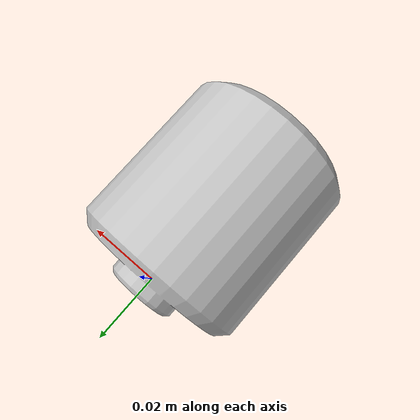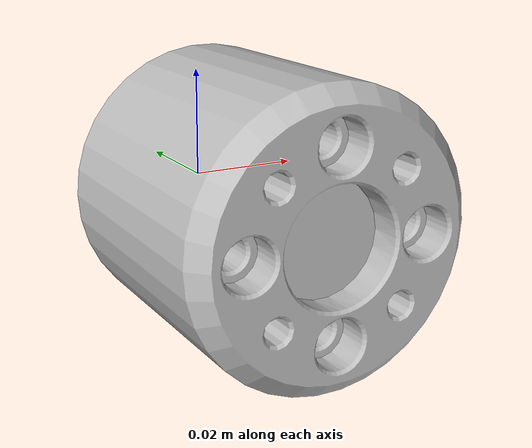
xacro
<?xml version="1.0" encoding="utf-8"?>
<robot xmlns:xacro="http://www.ros.org/wiki/xacro"
  name="extender">

  <link
    name="link_extender">
    <inertial>
      <origin
        xyz="-5.17709074753684E-17 2.39346204362228E-17 0.023707057889378"
        rpy="0 0 0" />
      <mass
        value="0.0901411341968167" />
      <inertia
        ixx="3.21898550179311E-05"
        ixy="2.53970297447911E-21"
        ixz="3.5531232175751E-20"
        iyy="3.21898550179311E-05"
        iyz="-1.94420820770643E-20"
        izz="2.82781083124868E-05" />
    </inertial>
    <visual>
      <origin
        xyz="0 0 0"
        rpy="0 0 0" />
      <geometry>
        <mesh
          filename="package://system_urdf/meshes/roller_probe_pieces/extender.STL" />
      </geometry>
      <material
        name="">
        <color
          rgba="0.749019607843137 0.749019607843137 0.749019607843137 1" />
      </material>
    </visual>
    <collision>
      <origin
        xyz="0 0 0"
        rpy="0 0 0" />
      <geometry>
        <mesh
          filename="package://system_urdf/meshes/roller_probe_pieces/extender.STL" />
      </geometry>
    </collision>
  </link>
</robot>
